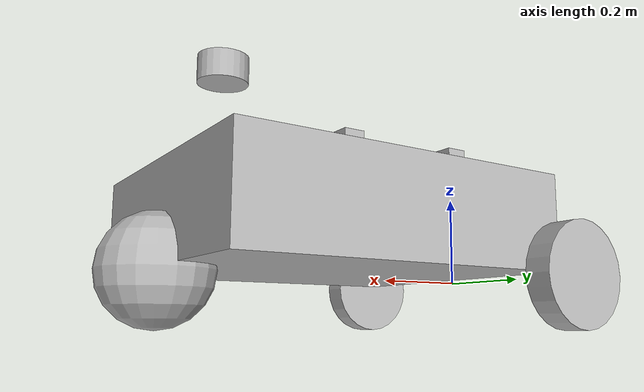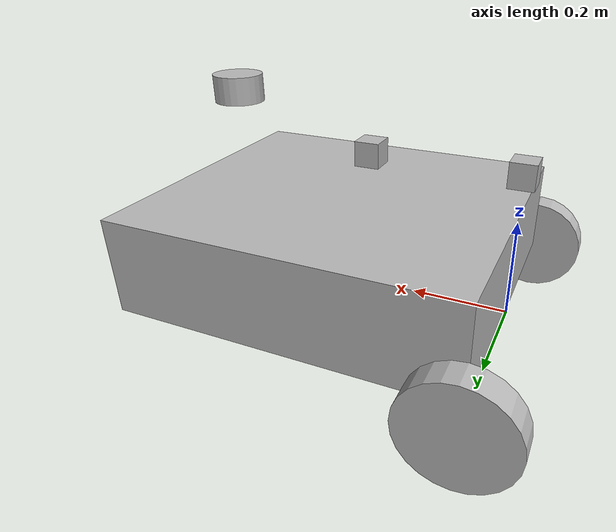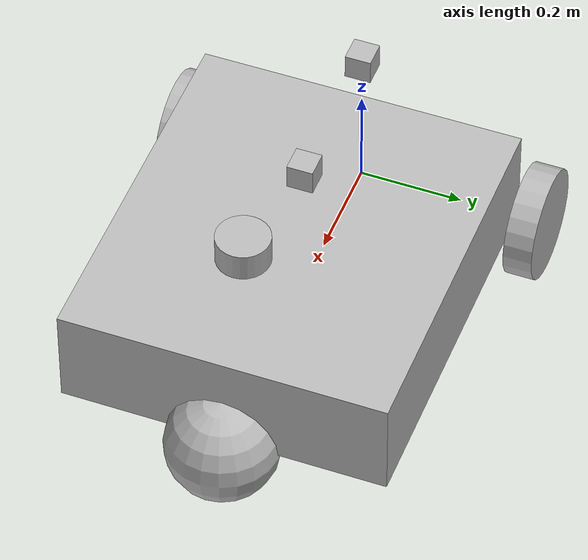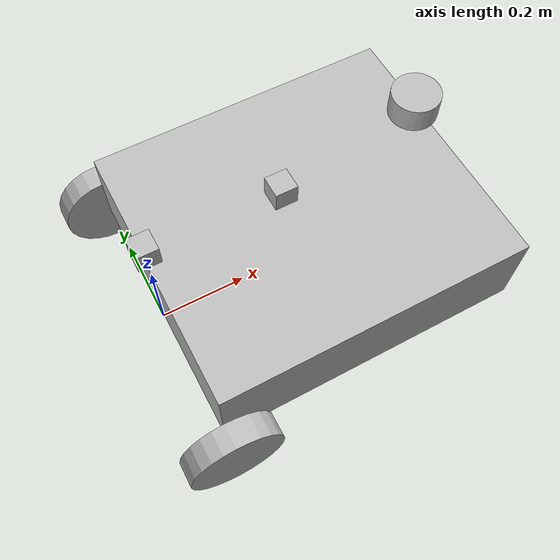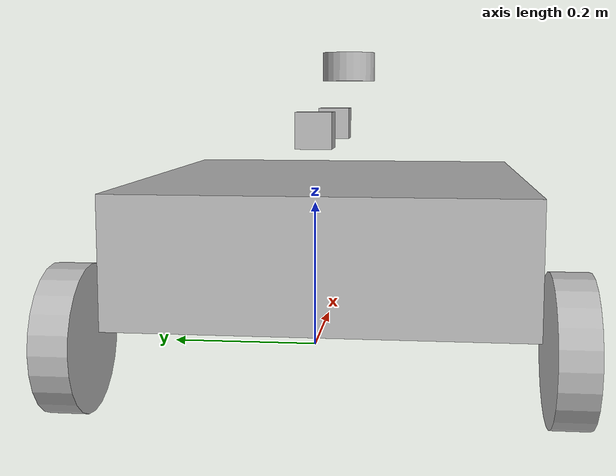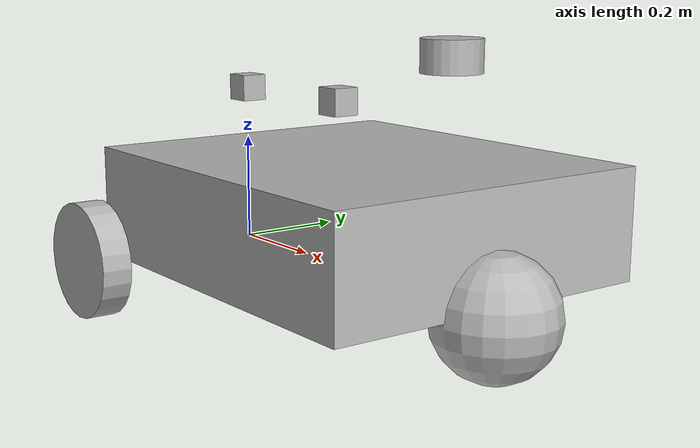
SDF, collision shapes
<?xml version='1.0'?>
<sdf version='1.7'>
  <model name="blindenhund">
    <pose>0 0 0 0 0 0</pose>

    <link name="base_link">
      <pose>0 0 0 0 0 0</pose>
    </link>

    <link name="base_frame">
      <pose>0.3576 0 0.1082 0 0 0</pose>
      <inertial>
        <pose>0 0 0 0 0 0</pose>
        <mass>4</mass>
        <inertia>
          <ixx>0.1</ixx>
          <ixy>0</ixy>
          <ixz>0</ixz>
          <iyy>0.1</iyy>
          <iyz>0</iyz>
          <izz>0.1</izz>
        </inertia>
      </inertial>
      <self_collide>0</self_collide>
      <enable_wind>0</enable_wind>
      <kinematic>0</kinematic>
      <gravity>1</gravity>
      <visual name="base_visual">
        <pose>0 0 0 0 0 0</pose>
        <geometry>
          <box>
            <size>0.7152 0.628 0.20</size>
          </box>
        </geometry>
      </visual>
      <collision name="base_collision">
        <max_contacts>10</max_contacts>
        <pose>0 0 0 0 0 0</pose>
        <geometry>
          <box>
            <size>0.7152 0.628 0.20</size>
          </box>
        </geometry>
      </collision>
    </link>

    <link name="wheel_left_link">
      <pose>0 0.3493 0 -1.5707 0 0</pose>
      <inertial>
        <pose>0 0 0 0 0 0</pose>
        <inertia>
          <ixx>14.5833</ixx>
          <ixy>0</ixy>
          <ixz>0</ixz>
          <iyy>14.5833</iyy>
          <iyz>0</iyz>
          <izz>12.5</izz>
        </inertia>
        <mass>4</mass>
      </inertial>
      <visual name="wheel_left_visual">
        <pose>0 0 0 0 0 0</pose>
        <geometry>
          <cylinder>
            <radius>0.1082</radius>
            <length>0.056</length>
          </cylinder>
        </geometry>
      </visual>
      <collision name="wheel_left_collision">
        <pose>0 0 0 0 0 0</pose>
        <geometry>
          <cylinder>
            <radius>0.1082</radius>
            <length>0.056</length>
          </cylinder>
        </geometry>
        <surface>
          <friction>
            <ode>
              <mu>1.0</mu>
              <mu2>1.0</mu2>
              <fdir1>0 0 0</fdir1>
              <slip1>0.0</slip1>
              <slip2>0.0</slip2>
            </ode>
          </friction>
          <contact>
            <ode>
              <kp>1e+15</kp>
              <kd>1e+5</kd>
              <max_vel>0.1</max_vel>
              <min_depth>0.01</min_depth>
            </ode>
          </contact>
        </surface>
      </collision>
    </link>

    <link name="wheel_right_link">
      <pose>0 -0.3493 0 -1.5707 0 0</pose>
      <inertial>
        <pose>0 0 0 0 0 0</pose>
        <inertia>
          <ixx>14.5833</ixx>
          <ixy>0</ixy>
          <ixz>0</ixz>
          <iyy>14.5833</iyy>
          <iyz>0</iyz>
          <izz>12.5</izz>
        </inertia>
        <mass>4</mass>
      </inertial>
      <visual name="wheel_right_visual">
        <pose>0 0 0 0 0 0</pose>
        <geometry>
          <cylinder>
            <radius>0.1082</radius>
            <length>0.056</length>
          </cylinder>
        </geometry>
      </visual>
      <collision name="wheel_right_collision">
        <pose>0 0 0 0 -0 0</pose>
        <geometry>
          <cylinder>
            <radius>0.1082</radius>
            <length>0.056</length>
          </cylinder>
        </geometry>
        <surface>
          <friction>
            <ode>
              <mu>1.0</mu>
              <mu2>1.0</mu2>
              <fdir1>0 0 0</fdir1>
              <slip1>0.0</slip1>
              <slip2>0.0</slip2>
            </ode>
          </friction>
          <contact>
            <ode>
              <kp>1e+15</kp>
              <kd>1e+5</kd>
              <max_vel>0.1</max_vel>
              <min_depth>0.01</min_depth>
            </ode>
          </contact>
        </surface>
      </collision>
    </link>

    <link name='caster_link'>
      <pose>0.7152 0 0 0 0 0</pose>
      <inertial>
        <mass>4</mass>
        <inertia>
          <ixx>1.0</ixx>
          <ixy>0.000</ixy>
          <ixz>0.000</ixz>
          <iyy>1.0</iyy>
          <iyz>0.000</iyz>
          <izz>1.0</izz>
        </inertia>
        <pose>0 0 0 0 -0 0</pose>
      </inertial>
      <visual name="visual">
        <geometry>
          <sphere>
            <radius>0.1082</radius>
          </sphere>
        </geometry>
        <pose>0 0 0 0 0 0</pose>
      </visual>
      <collision name='collision'>
        <max_contacts>10</max_contacts>
        <pose>0 0 0 0 0 0</pose>
        <geometry>
          <sphere>
            <radius>0.1082</radius>
          </sphere>
        </geometry>
        <surface>
          <contact>
            <ode>
              <kp>1e+15</kp>
              <kd>1e+5</kd>
              <max_vel>0.1</max_vel>
              <min_depth>0.01</min_depth>
            </ode>
          </contact>
        </surface>
      </collision>
    </link>

    <link name="imu_link">
      <pose>0 0 0.3 0 0 0</pose>
      <visual name="imu_visual">
        <pose>0 0 0 0 0 0</pose>
        <geometry>
          <box>
            <size>0.05 0.05 0.05</size>
          </box>
        </geometry>
      </visual>
      <collision name="imu_collision">
        <max_contacts>10</max_contacts>
        <pose>0 0 0 0 0 0</pose>
        <geometry>
          <box>
            <size>0.05 0.05 0.05</size>
          </box>
        </geometry>
      </collision>
      <sensor name="sgd_imu" type="imu">
        <pose>0 0 0 0 0 0</pose>
        <always_on>true</always_on>
        <update_rate>10</update_rate>
        <visualize>true</visualize>
        <topic>__default_topic__</topic>
        <initialOrientationAsReference>false</initialOrientationAsReference>
        <imu>
          <angular_velocity>
            <x>
              <noise type="gaussian">
                <mean>0.0</mean>
                <stddev>2e-2</stddev>
              </noise>
            </x>
            <y>
              <noise type="gaussian">
                <mean>0.0</mean>
                <stddev>2e-2</stddev>
              </noise>
            </y>
            <z>
              <noise type="gaussian">
                <mean>0.0</mean>
                <stddev>2e-2</stddev>
              </noise>
            </z>
          </angular_velocity>
          <linear_acceleration>
            <x>
              <noise type="gaussian">
                <mean>-0.0</mean>
                <stddev>3.54e-1</stddev>
              </noise>
            </x>
            <y>
              <noise type="gaussian">
                <mean>0.0</mean>
                <stddev>3.98e-1</stddev>
              </noise>
            </y>
            <z>
              <noise type="gaussian">
                <mean>0.0</mean>
                <stddev>4.8e-1</stddev>
              </noise>
            </z>
          </linear_acceleration>
        </imu>
        <plugin name="blindenhund_imu" filename="libgazebo_ros_imu_sensor.so">
          <ros>
            <remapping>~/out:=imu</remapping>
          </ros>
          <gravity>false</gravity>
          <topicName>imu</topicName>
          <bodyName>imu_link</bodyName>
          <updateRateHZ>10.0</updateRateHZ>
          <gaussianNoise>0.0</gaussianNoise>
          <xyzOffset>0 0 0</xyzOffset>
          <rpyOffset>0 0 0</rpyOffset>
          <frameName>imu_link</frameName>
          <initialOrientationAsReference>false</initialOrientationAsReference>
        </plugin>
      </sensor>
      <self_collide>0</self_collide>
      <inertial>
        <pose>0 0 0 0 -0 0</pose>
        <inertia>
          <ixx>1</ixx>
          <ixy>0</ixy>
          <ixz>0</ixz>
          <iyy>1</iyy>
          <iyz>0</iyz>
          <izz>1</izz>
        </inertia>
        <mass>0.001</mass>
      </inertial>
      <enable_wind>0</enable_wind>
      <kinematic>0</kinematic>
    </link>

    <link name="base_scan">
      <pose>0.6 -0 0.4 3.14159 -0 0</pose>
      <self_collide>0</self_collide>
      <enable_wind>0</enable_wind>
      <kinematic>0</kinematic>
      <gravity>1</gravity>
      <inertial>
        <pose>0 0 0 0 0 0</pose>
        <inertia>
          <ixx>0.001</ixx>
          <ixy>0.000</ixy>
          <ixz>0.000</ixz>
          <iyy>0.001</iyy>
          <iyz>0.000</iyz>
          <izz>0.001</izz>
        </inertia>
        <mass>0.2</mass>
      </inertial>
      <visual name="lidar_sensor_visual">
        <pose>0 0 0 0 0 0</pose>
        <geometry>
          <mesh>
            <uri>model://blindenhund/lds.dae</uri>
            <scale>0.001 0.001 0.001</scale>
          </mesh>
        </geometry>
      </visual>
      <collision name="lidar_sensor_collision">
        <pose>0 0 0 0 0 0</pose>
        <geometry>
          <cylinder>
            <radius>0.0508</radius>
            <length>0.055</length>
          </cylinder>
        </geometry>
      </collision>

      <sensor name="sick_tim5xx" type="ray">
        <always_on>true</always_on>
        <visualize>true</visualize>
        <pose>0 0 0 0 0 0</pose>
        <update_rate>15</update_rate>
        <ray>
          <scan>
            <horizontal>
              <samples>810</samples>
              <resolution>0.33</resolution>
              <min_angle>-2.3562</min_angle>
              <max_angle>2.3562</max_angle>
            </horizontal>
          </scan>
          <range>
            <min>0.3</min>
            <max>25</max>
            <resolution>0.06</resolution>
          </range>
          <noise>
            <type>gaussian</type>
            <mean>0.0</mean>
            <stddev>0.01</stddev>
          </noise>
        </ray>
        <plugin name="sick_laserscan" filename="libgazebo_ros_ray_sensor.so">
          <ros>
              <remapping>~/out:=scan</remapping>
          </ros>
          <output_type>sensor_msgs/LaserScan</output_type>
          <frame_name>base_scan</frame_name>
        </plugin>
      </sensor>
    </link>

    <link name="gps_link">
      <pose>0.3 0 0.3 0 0 0</pose>
      <inertial>
        <pose>0 0 0 0 0 0</pose>
        <inertia>
          <ixx>0.001</ixx>
          <ixy>0.000</ixy>
          <ixz>0.000</ixz>
          <iyy>0.001</iyy>
          <iyz>0.000</iyz>
          <izz>0.001</izz>
        </inertia>
        <mass>0.01</mass>
      </inertial>
      <visual name="gps_visual">
        <pose>0 0 0 0 0 0</pose>
        <geometry>
          <box>
            <size>0.05 0.05 0.05</size>
          </box>
        </geometry>
      </visual>
      <collision name="gps_collision">
        <max_contacts>10</max_contacts>
        <pose>0 0 0 0 0 0</pose>
        <geometry>
          <box>
            <size>0.05 0.05 0.05</size>
          </box>
        </geometry>
      </collision>
      <sensor name="gps_sensor" type="gps">
        <always_on>true</always_on>
        <update_rate>4</update_rate>
        <gps>
          <position_sensing>
            <horizontal>
              <noise type="gaussian">
                <mean>0.0</mean>
                <stddev>2e-4</stddev>
              </noise>
            </horizontal>
            <vertical>
              <noise type="gaussian">
                <mean>0.0</mean>
                <stddev>2e-4</stddev>
              </noise>
            </vertical>
          </position_sensing>
        </gps>
        <plugin name="my_gps_plugin" filename="libgazebo_ros_gps_sensor.so">
          <ros>
            <remapping>~/out:=gps</remapping>
          </ros>
          <frame_name>map</frame_name>
        </plugin>
      </sensor>
    </link>

    <joint name="base_joint" type="fixed">
      <parent>base_link</parent>
      <child>base_frame</child>
      <pose>0 0 0 0 0 0</pose>
    </joint>

    <joint name="wheel_left_joint" type="revolute">
      <parent>base_frame</parent>
      <child>wheel_left_link</child>
      <pose>0 0 0 0 0 0</pose>
      <axis>
        <xyz>0 0 1</xyz>
      </axis>
    </joint>

    <joint name="wheel_right_joint" type="revolute">
      <parent>base_frame</parent>
      <child>wheel_right_link</child>
      <pose>0 0 0 0 0 0</pose>
      <axis>
        <xyz>0 0 1</xyz>
      </axis>
    </joint>

    <joint name='caster_joint' type='ball'>
      <parent>base_frame</parent>
      <child>caster_link</child>
      <pose>0 0 0 0 0 0</pose>
    </joint>

    <joint name="lidar_joint" type="fixed">
      <parent>base_frame</parent>
      <child>base_scan</child>
      <pose>0 0 0 0 0 0</pose>
    </joint>

    <joint name="gps_joint" type="fixed">
      <parent>base_frame</parent>
      <child>gps_link</child>
      <pose>0 0 0 0 0 0</pose>
    </joint>

    <joint name="imu_joint" type="fixed">
      <parent>base_frame</parent>
      <child>imu_link</child>
      <pose>0 0 0 0 0 0</pose>
    </joint>

    <plugin name="sgd_diff_drive" filename="libgazebo_ros_diff_drive.so">
      <update_rate>10</update_rate>

      <left_joint>wheel_left_joint</left_joint>
      <right_joint>wheel_right_joint</right_joint>

      <wheel_separation>0.71</wheel_separation>
      <wheel_diameter>0.2165</wheel_diameter>

      <max_wheel_torque>10</max_wheel_torque>
      <max_wheel_acceleration>0.5</max_wheel_acceleration>

      <command_topic>cmd_vel</command_topic> <!-- hard coded -->

      <publish_odom>true</publish_odom>
      <publish_odom_tf>false</publish_odom_tf>
      <publish_wheel_tf>false</publish_wheel_tf>

      <odometry_topic>odom</odometry_topic>
      <odometry_frame>odom</odometry_frame>
      <robot_base_frame>base_frame</robot_base_frame>
    </plugin>

  </model>
</sdf>
